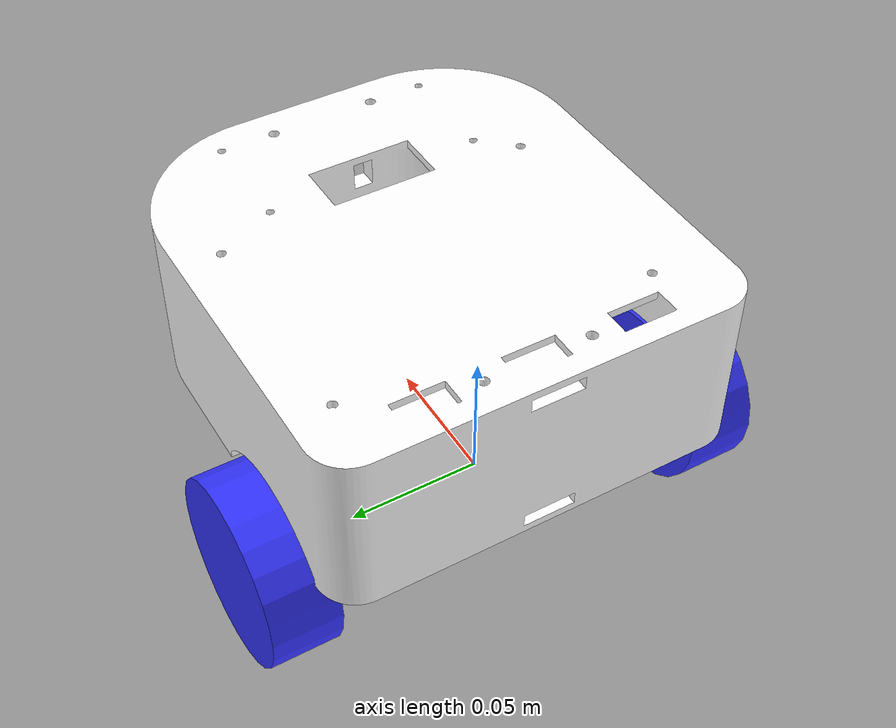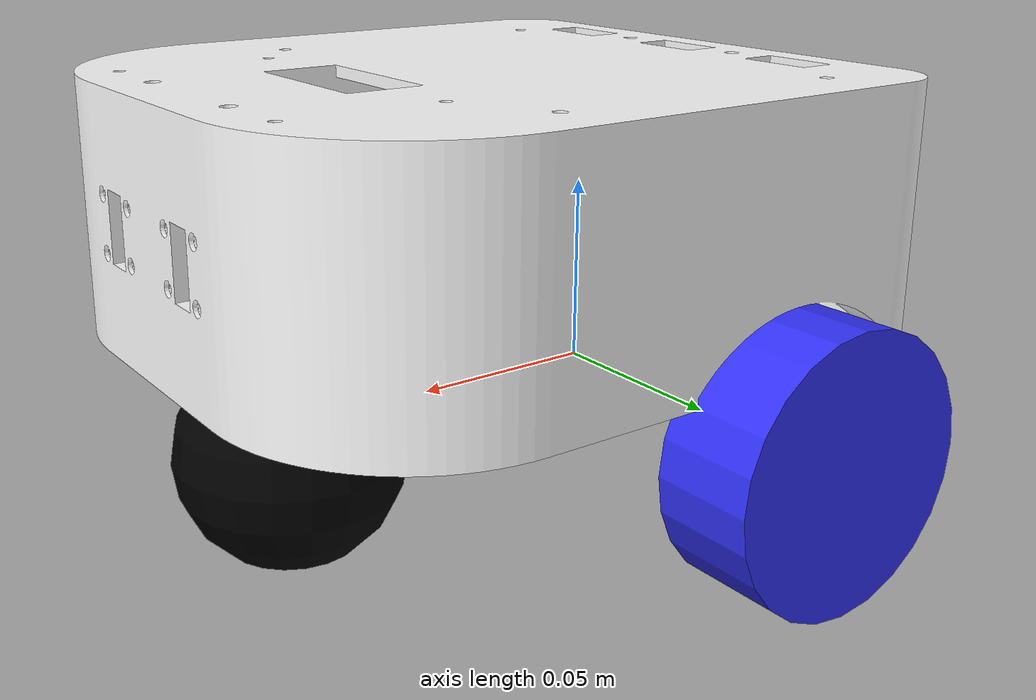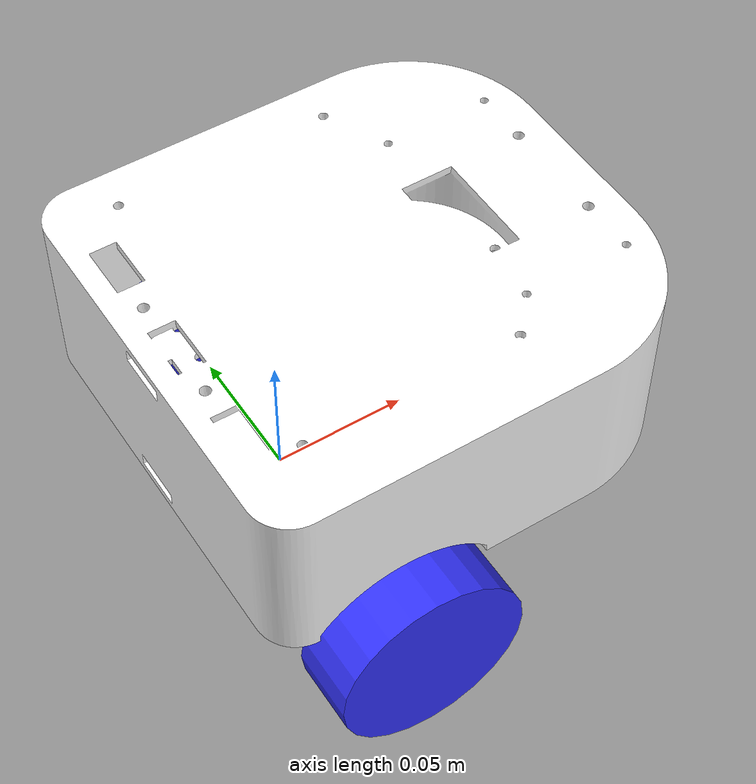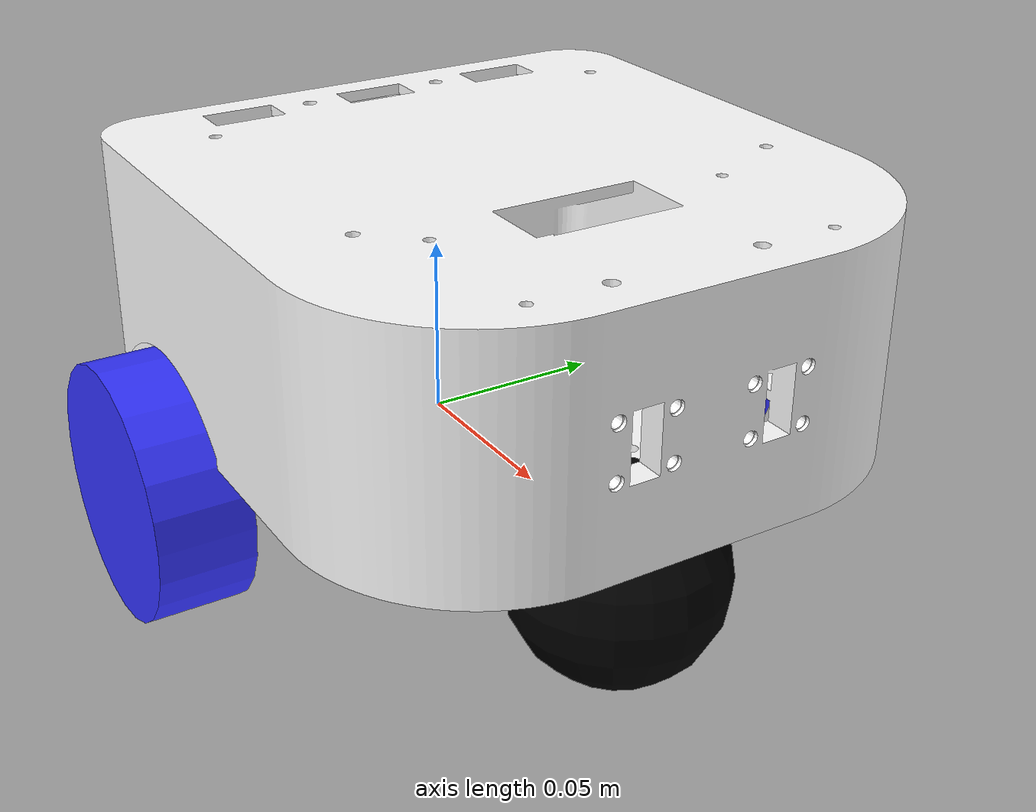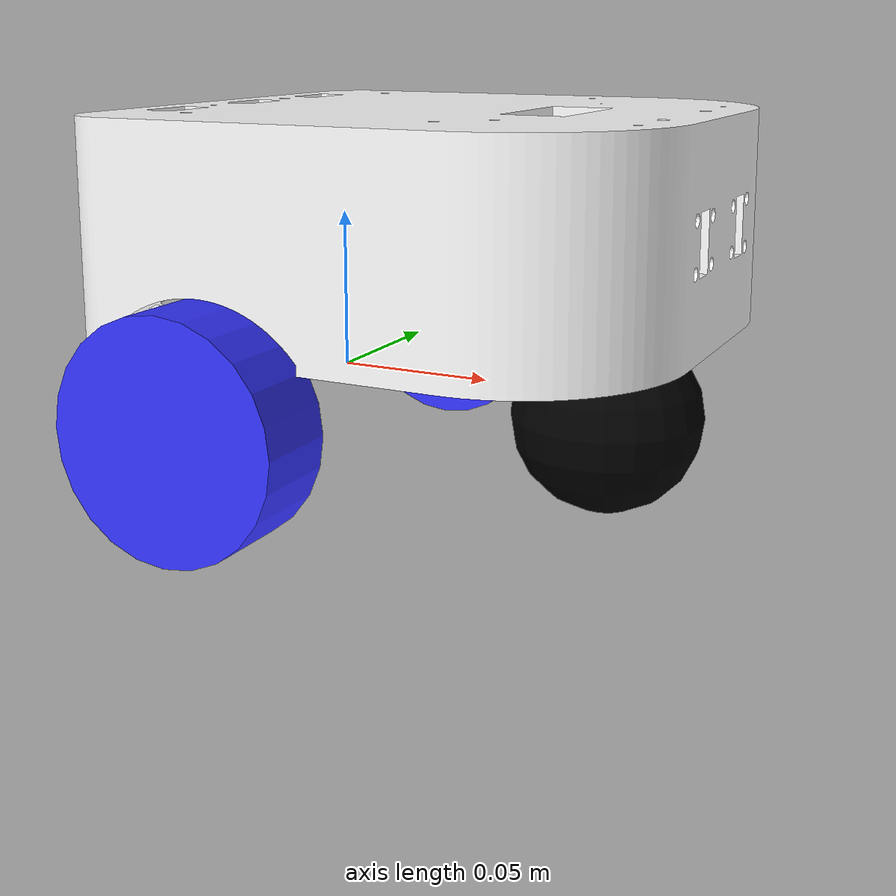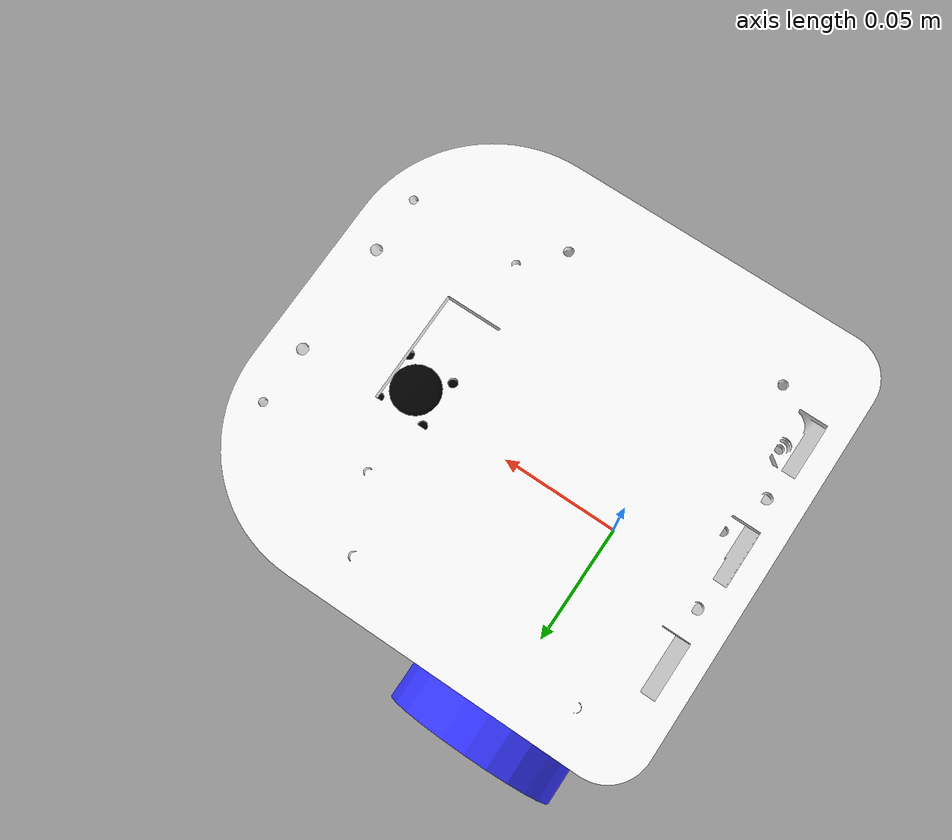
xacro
<?xml version="1.0"?>
<robot xmlns:xacro="http://www.ros.org/wiki/xacro" >

    <xacro:include filename="inertial_macros.xacro"/>

    <material name="white">
        <color rgba="1 1 1 1" />
    </material>

    <material name="orange">
        <color rgba="1 0.3 0.1 1" />
    </material>

    <material name="blue">
        <color rgba="0.2 0.2 1 1" />
    </material>

    <material name="black">
        <color rgba="0 0 0 1" />
    </material>

    <!-- BASE LINK -->
    <link name="base_link"/>

    <!-- BASE_FOOTPRINT LINK -->
    <joint name="base_footprint_joint" type="fixed">
        <parent link="base_link"/>
        <child link="base_footprint"/>
        <origin xyz="0 0 0" rpy="0 0 0"/>
    </joint>

    <!-- FIX: el original tenÃ­a '/' como contenido del link, que es texto suelto invalido. -->
    <link name="base_footprint"/>

    <joint name="chassis_joint" type="fixed">
        <parent link="base_link"/>
        <child link="chassis"/>
        <origin xyz="0 0 0"/>
    </joint>

    <link name="chassis">
        <visual>
            <origin xyz="-0.047 -0.08 0.084" rpy="0 0 ${pi/2}"/>
            <geometry>
                <mesh filename="package://test_bot/meshes/base_link.stl" scale="0.001 0.001 0.001"/>
            </geometry>
            <material name="white"/>
        </visual>
        <collision>
            <origin xyz="-0.047 -0.08 0.084" rpy="0 0 ${pi/2}"/>
            <geometry>
                <mesh filename="package://test_bot/meshes/base_link.stl" scale="0.001 0.001 0.001"/>
            </geometry>
        </collision>
        <inertial>
            <origin xyz="0.0352 0.0 0.0523" rpy="0 0 0"/>
            <mass value="0.23692"/>
            <inertia ixx="0.000822" iyy="0.000915" izz="0.001442"
                     ixy="0.0" ixz="6e-06" iyz="0.0"/>
        </inertial>
    </link>

    <gazebo reference="chassis">
        <material>Gazebo/White</material>
    </gazebo>

    <joint name="left_wheel_joint" type="continuous">
        <parent link="base_link"/>
        <child link="left_wheel"/>
        <origin xyz="0 0.085 0" rpy="-${pi/2} 0 0" />
        <axis xyz="0 0 1"/>
        <!-- FIX: damping evita micro-movimientos espurios del simulador en reposo -->
        <dynamics damping="0.05" friction="0.01"/>
    </joint>

    <link name="left_wheel">
        <visual>
            <geometry>
                <cylinder radius ="0.035" length="0.026"/>
            </geometry>
            <material name="blue" />
        </visual>
        <collision>
            <geometry>
                <cylinder radius ="0.035" length="0.026"/>
            </geometry>
        </collision>
        <xacro:inertial_cylinder mass="0.034" length="0.026" radius="0.035">
            <origin xyz="0 0 0" rpy="0 0 0" />
        </xacro:inertial_cylinder>
    </link>

    <gazebo reference="left_wheel">
        <material>Gazebo/Blue</material>
        <mu1>1.0</mu1>
        <mu2>1.0</mu2>
        <kp>1000000.0</kp>
        <kd>100.0</kd>
        <minDepth>0.001</minDepth>
        <maxVel>0.1</maxVel>
    </gazebo>

    <!-- RIGHT WHEEL LINK -->
    <joint name="right_wheel_joint" type="continuous">
        <parent link="base_link"/>
        <child link="right_wheel"/>
        <origin xyz="0 -0.085 0" rpy="${pi/2} 0 0" />
        <axis xyz="0 0 -1"/>
        <dynamics damping="0.05" friction="0.01"/>
    </joint>

    <link name="right_wheel">
        <visual>
            <geometry>
                <cylinder radius ="0.035" length="0.026"/>
            </geometry>
            <material name="blue" />
        </visual>
        <collision>
            <geometry>
                <cylinder radius ="0.035" length="0.026"/>
            </geometry>
        </collision>
        <xacro:inertial_cylinder mass="0.034" length="0.026" radius="0.035">
            <origin xyz="0 0 0" rpy="0 0 0" />
        </xacro:inertial_cylinder>
    </link>

    <gazebo reference="right_wheel">
        <material>Gazebo/Blue</material>
        <mu1>1.0</mu1>
        <mu2>1.0</mu2>
        <kp>1000000.0</kp>
        <kd>100.0</kd>
        <minDepth>0.001</minDepth>
        <maxVel>0.1</maxVel>
    </gazebo>

    <joint name="caster_wheel_joint" type="fixed">
        <parent link="chassis"/>
        <child link="caster_wheel"/>
        <origin xyz="0.09 0 -0.006"/>
    </joint>

    <link name="caster_wheel">
        <visual>
            <geometry>
                <sphere radius="0.029"/>
            </geometry>
            <material name="black" />
        </visual>
        <collision>
            <geometry>
                <sphere radius="0.029"/>
            </geometry>
        </collision>
        <xacro:inertial_sphere mass="0.01" radius="0.029">
            <origin xyz="0 0 0" rpy="0 0 0"/>
        </xacro:inertial_sphere>
    </link>

    <gazebo reference="caster_wheel">
        <material>Gazebo/Black</material>
        <mu1 value="0.001"/>
        <mu2 value="0.001"/>
    </gazebo>

</robot>
